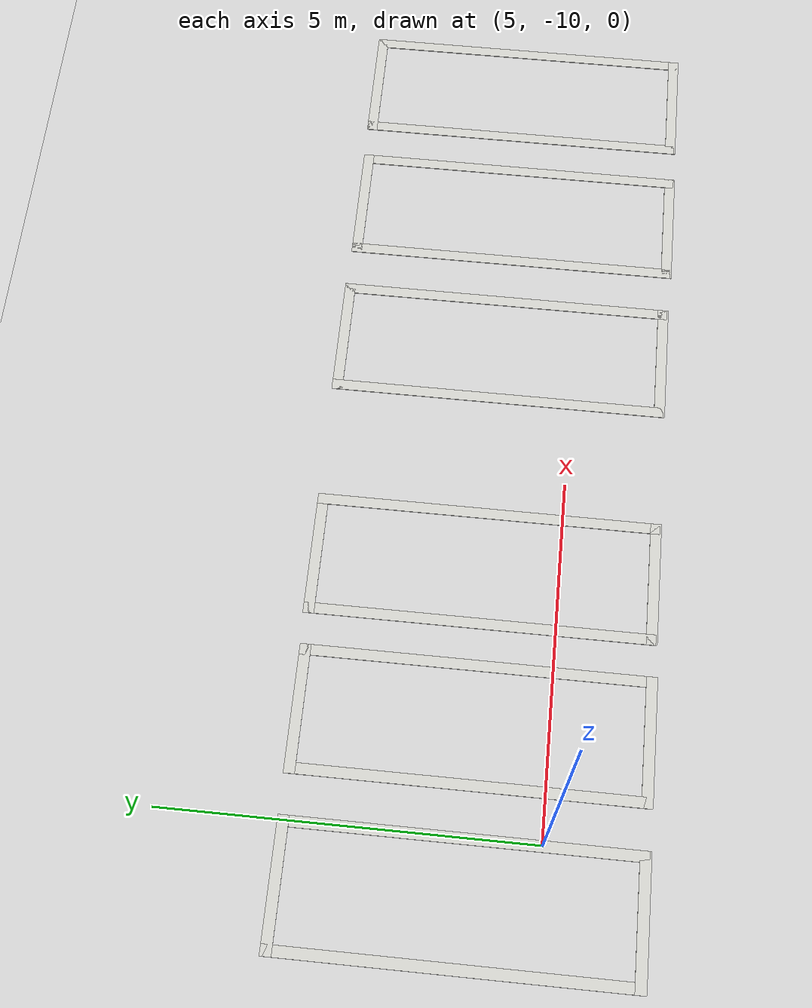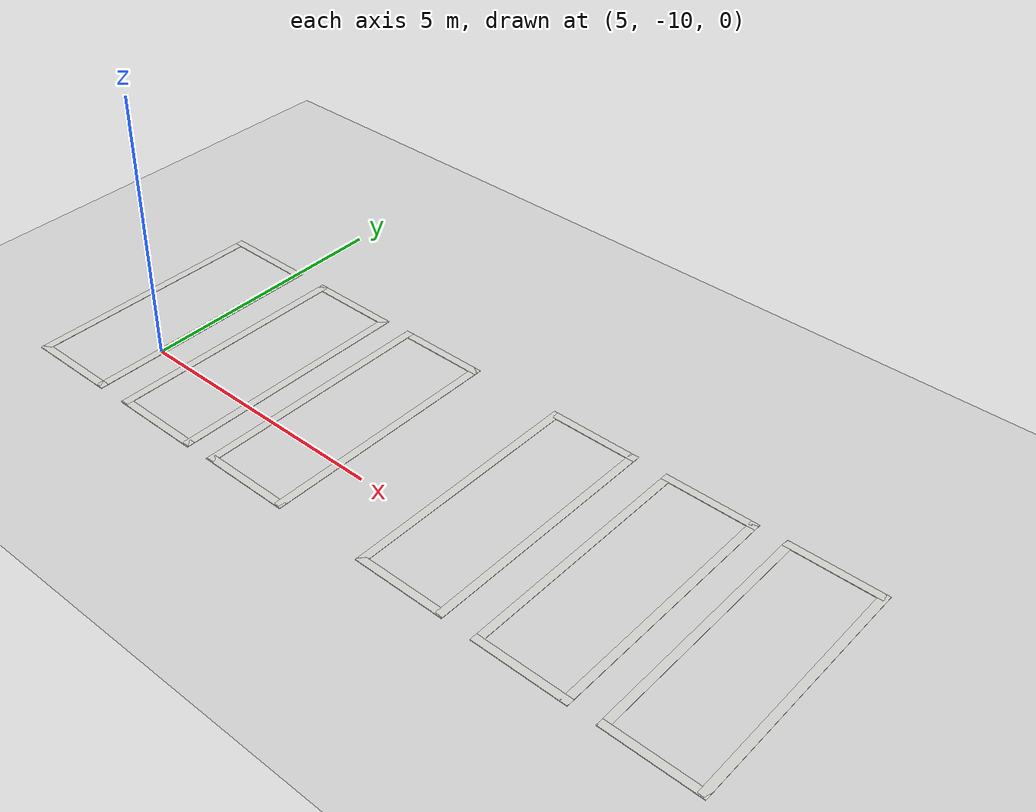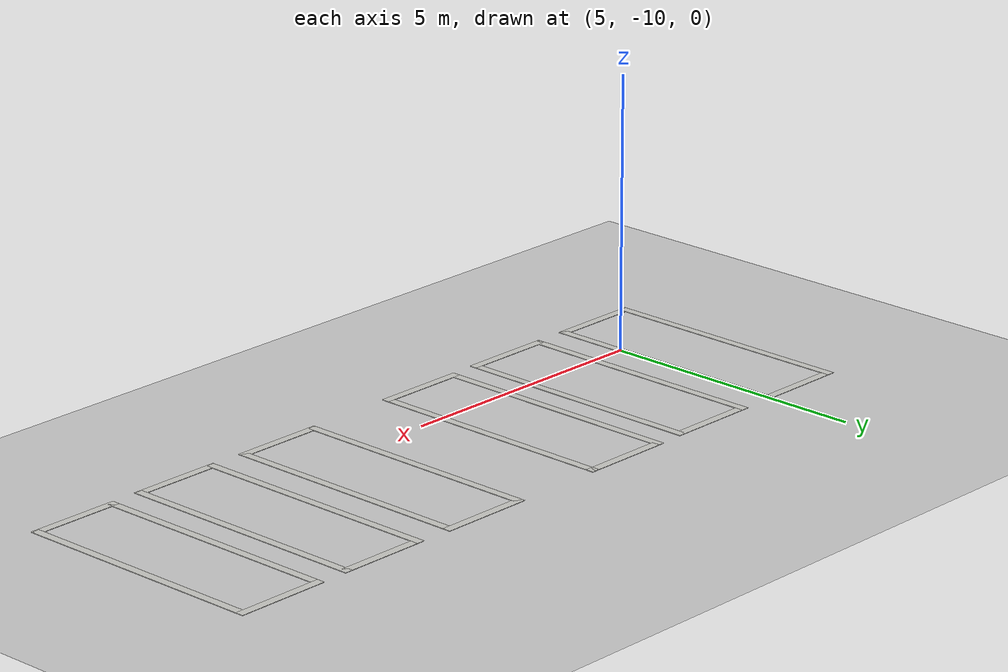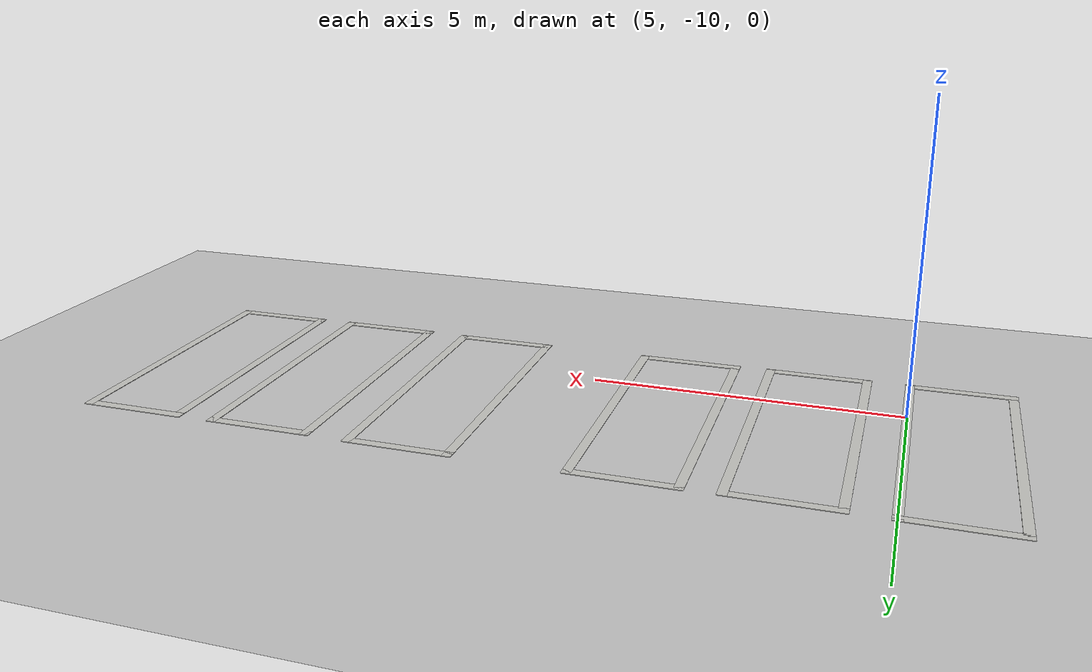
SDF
<sdf version="1.6">
 <world name="default">
  <model name="ground_plane">
   <static>1</static>
   <link name="link">
    <collision name="collision">
     <geometry><plane><normal>0 0 1</normal><size>100 100</size></plane></geometry>
     <surface>
      <contact><collide_bitmask>65535</collide_bitmask></contact>
      <friction><ode><mu>100</mu><mu2>50</mu2></ode></friction>
     </surface>
    </collision>
    <visual name="visual">
     <cast_shadows>0</cast_shadows>
     <geometry><plane><normal>0 0 1</normal><size>100 100</size></plane></geometry>
     <material>
      <script><uri>file://media/materials/scripts/gazebo.material</uri><name>Gazebo/Grey</name></script>
     </material>
    </visual>
   </link>
  </model>
  <model name="box_front_clone_9">
   <pose>4.19929 -8.99758 0 0 -0 0</pose>
   <link name="Wall_3">
    <collision name="Wall_3_Collision"><geometry><box><size>0 0 0</size></box></geometry></collision>
    <visual name="Wall_3_Visual">
     <geometry><box><size>1.75 0.15 0.01</size></box></geometry>
     <material>
      <script><uri>file://media/materials/scripts/gazebo.material</uri><name>Gazebo/CeilingTiled</name></script>
      <ambient>1 1 1 1</ambient>
     </material>
     <meta><layer>0</layer></meta>
    </visual>
    <pose>0 2.31006 0 0 -0 0</pose>
   </link>
   <link name="Wall_4">
    <collision name="Wall_4_Collision"><geometry><box><size>0 0 0</size></box></geometry></collision>
    <visual name="Wall_4_Visual">
     <geometry><box><size>4.75 0.15 0.01</size></box></geometry>
     <material>
      <script><uri>file://media/materials/scripts/gazebo.material</uri><name>Gazebo/CeilingTiled</name></script>
      <ambient>1 1 1 1</ambient>
     </material>
     <meta><layer>0</layer></meta>
    </visual>
    <pose>0.8 0.010056 0 0 -0 -1.5708</pose>
   </link>
   <link name="Wall_5">
    <collision name="Wall_5_Collision">
     <geometry><box><size>0 0 0</size></box></geometry>
     <pose>0 0 1.25 0 -0 0</pose>
    </collision>
    <visual name="Wall_5_Visual">
     <geometry><box><size>1.75 0.15 0.01</size></box></geometry>
     <material>
      <script><uri>file://media/materials/scripts/gazebo.material</uri><name>Gazebo/CeilingTiled</name></script>
      <ambient>1 1 1 1</ambient>
     </material>
     <meta><layer>0</layer></meta>
    </visual>
    <pose>0 -2.31006 0 0 -0 3.14159</pose>
   </link>
   <link name="Wall_7">
    <collision name="Wall_7_Collision">
     <geometry><box><size>0 0 0</size></box></geometry>
     <pose>0 0 1.25 0 -0 0</pose>
    </collision>
    <visual name="Wall_7_Visual">
     <geometry><box><size>4.75 0.15 0.01</size></box></geometry>
     <material>
      <script><uri>file://media/materials/scripts/gazebo.material</uri><name>Gazebo/CeilingTiled</name></script>
      <ambient>1 1 1 1</ambient>
     </material>
     <meta><layer>0</layer></meta>
    </visual>
    <pose>-0.8 0.010056 0 0 -0 -1.5708</pose>
   </link>
   <static>1</static>
  </model>
  <model name="box_front_clone_10">
   <pose>6.48084 -8.99285 0 0 -0 0</pose>
   <link name="Wall_3">
    <collision name="Wall_3_Collision"><geometry><box><size>0 0 0</size></box></geometry></collision>
    <visual name="Wall_3_Visual">
     <geometry><box><size>1.75 0.15 0.01</size></box></geometry>
     <material>
      <script><uri>file://media/materials/scripts/gazebo.material</uri><name>Gazebo/CeilingTiled</name></script>
      <ambient>1 1 1 1</ambient>
     </material>
     <meta><layer>0</layer></meta>
    </visual>
    <pose>0 2.31006 0 0 -0 0</pose>
   </link>
   <link name="Wall_4">
    <collision name="Wall_4_Collision"><geometry><box><size>0 0 0</size></box></geometry></collision>
    <visual name="Wall_4_Visual">
     <geometry><box><size>4.75 0.15 0.01</size></box></geometry>
     <material>
      <script><uri>file://media/materials/scripts/gazebo.material</uri><name>Gazebo/CeilingTiled</name></script>
      <ambient>1 1 1 1</ambient>
     </material>
     <meta><layer>0</layer></meta>
    </visual>
    <pose>0.8 0.010056 0 0 -0 -1.5708</pose>
   </link>
   <link name="Wall_5">
    <collision name="Wall_5_Collision">
     <geometry><box><size>0 0 0</size></box></geometry>
     <pose>0 0 1.25 0 -0 0</pose>
    </collision>
    <visual name="Wall_5_Visual">
     <geometry><box><size>1.75 0.15 0.01</size></box></geometry>
     <material>
      <script><uri>file://media/materials/scripts/gazebo.material</uri><name>Gazebo/CeilingTiled</name></script>
      <ambient>1 1 1 1</ambient>
     </material>
     <meta><layer>0</layer></meta>
    </visual>
    <pose>0 -2.31006 0 0 -0 3.14159</pose>
   </link>
   <link name="Wall_7">
    <collision name="Wall_7_Collision">
     <geometry><box><size>0 0 0</size></box></geometry>
     <pose>0 0 1.25 0 -0 0</pose>
    </collision>
    <visual name="Wall_7_Visual">
     <geometry><box><size>4.75 0.15 0.01</size></box></geometry>
     <material>
      <script><uri>file://media/materials/scripts/gazebo.material</uri><name>Gazebo/CeilingTiled</name></script>
      <ambient>1 1 1 1</ambient>
     </material>
     <meta><layer>0</layer></meta>
    </visual>
    <pose>-0.8 0.010056 0 0 -0 -1.5708</pose>
   </link>
   <static>1</static>
  </model>
  <model name="box_front_clone_11">
   <pose>8.66718 -8.97 0 0 -0 0</pose>
   <link name="Wall_3">
    <collision name="Wall_3_Collision"><geometry><box><size>0 0 0</size></box></geometry></collision>
    <visual name="Wall_3_Visual">
     <geometry><box><size>1.75 0.15 0.01</size></box></geometry>
     <material>
      <script><uri>file://media/materials/scripts/gazebo.material</uri><name>Gazebo/CeilingTiled</name></script>
      <ambient>1 1 1 1</ambient>
     </material>
     <meta><layer>0</layer></meta>
    </visual>
    <pose>0 2.31006 0 0 -0 0</pose>
   </link>
   <link name="Wall_4">
    <collision name="Wall_4_Collision"><geometry><box><size>0 0 0</size></box></geometry></collision>
    <visual name="Wall_4_Visual">
     <geometry><box><size>4.75 0.15 0.01</size></box></geometry>
     <material>
      <script><uri>file://media/materials/scripts/gazebo.material</uri><name>Gazebo/CeilingTiled</name></script>
      <ambient>1 1 1 1</ambient>
     </material>
     <meta><layer>0</layer></meta>
    </visual>
    <pose>0.8 0.010056 0 0 -0 -1.5708</pose>
   </link>
   <link name="Wall_5">
    <collision name="Wall_5_Collision">
     <geometry><box><size>0 0 0</size></box></geometry>
     <pose>0 0 1.25 0 -0 0</pose>
    </collision>
    <visual name="Wall_5_Visual">
     <geometry><box><size>1.75 0.15 0.01</size></box></geometry>
     <material>
      <script><uri>file://media/materials/scripts/gazebo.material</uri><name>Gazebo/CeilingTiled</name></script>
      <ambient>1 1 1 1</ambient>
     </material>
     <meta><layer>0</layer></meta>
    </visual>
    <pose>0 -2.31006 0 0 -0 3.14159</pose>
   </link>
   <link name="Wall_7">
    <collision name="Wall_7_Collision">
     <geometry><box><size>0 0 0</size></box></geometry>
     <pose>0 0 1.25 0 -0 0</pose>
    </collision>
    <visual name="Wall_7_Visual">
     <geometry><box><size>4.75 0.15 0.01</size></box></geometry>
     <material>
      <script><uri>file://media/materials/scripts/gazebo.material</uri><name>Gazebo/CeilingTiled</name></script>
      <ambient>1 1 1 1</ambient>
     </material>
     <meta><layer>0</layer></meta>
    </visual>
    <pose>-0.8 0.010056 0 0 -0 -1.5708</pose>
   </link>
   <static>1</static>
  </model>
  <model name="box_front_clone_12">
   <pose>12.0614 -8.95658 0 0 -0 0</pose>
   <link name="Wall_3">
    <collision name="Wall_3_Collision"><geometry><box><size>0 0 0</size></box></geometry></collision>
    <visual name="Wall_3_Visual">
     <geometry><box><size>1.75 0.15 0.01</size></box></geometry>
     <material>
      <script><uri>file://media/materials/scripts/gazebo.material</uri><name>Gazebo/CeilingTiled</name></script>
      <ambient>1 1 1 1</ambient>
     </material>
     <meta><layer>0</layer></meta>
    </visual>
    <pose>0 2.31006 0 0 -0 0</pose>
   </link>
   <link name="Wall_4">
    <collision name="Wall_4_Collision"><geometry><box><size>0 0 0</size></box></geometry></collision>
    <visual name="Wall_4_Visual">
     <geometry><box><size>4.75 0.15 0.01</size></box></geometry>
     <material>
      <script><uri>file://media/materials/scripts/gazebo.material</uri><name>Gazebo/CeilingTiled</name></script>
      <ambient>1 1 1 1</ambient>
     </material>
     <meta><layer>0</layer></meta>
    </visual>
    <pose>0.8 0.010056 0 0 -0 -1.5708</pose>
   </link>
   <link name="Wall_5">
    <collision name="Wall_5_Collision">
     <geometry><box><size>0 0 0</size></box></geometry>
     <pose>0 0 1.25 0 -0 0</pose>
    </collision>
    <visual name="Wall_5_Visual">
     <geometry><box><size>1.75 0.15 0.01</size></box></geometry>
     <material>
      <script><uri>file://media/materials/scripts/gazebo.material</uri><name>Gazebo/CeilingTiled</name></script>
      <ambient>1 1 1 1</ambient>
     </material>
     <meta><layer>0</layer></meta>
    </visual>
    <pose>0 -2.31006 0 0 -0 3.14159</pose>
   </link>
   <link name="Wall_7">
    <collision name="Wall_7_Collision">
     <geometry><box><size>0 0 0</size></box></geometry>
     <pose>0 0 1.25 0 -0 0</pose>
    </collision>
    <visual name="Wall_7_Visual">
     <geometry><box><size>4.75 0.15 0.01</size></box></geometry>
     <material>
      <script><uri>file://media/materials/scripts/gazebo.material</uri><name>Gazebo/CeilingTiled</name></script>
      <ambient>1 1 1 1</ambient>
     </material>
     <meta><layer>0</layer></meta>
    </visual>
    <pose>-0.8 0.010056 0 0 -0 -1.5708</pose>
   </link>
   <static>1</static>
  </model>
  <model name="box_front_clone_13">
   <pose>14.3693 -8.97971 0 0 -0 0</pose>
   <link name="Wall_3">
    <collision name="Wall_3_Collision"><geometry><box><size>0 0 0</size></box></geometry></collision>
    <visual name="Wall_3_Visual">
     <geometry><box><size>1.75 0.15 0.01</size></box></geometry>
     <material>
      <script><uri>file://media/materials/scripts/gazebo.material</uri><name>Gazebo/CeilingTiled</name></script>
      <ambient>1 1 1 1</ambient>
     </material>
     <meta><layer>0</layer></meta>
    </visual>
    <pose>0 2.31006 0 0 -0 0</pose>
   </link>
   <link name="Wall_4">
    <collision name="Wall_4_Collision"><geometry><box><size>0 0 0</size></box></geometry></collision>
    <visual name="Wall_4_Visual">
     <geometry><box><size>4.75 0.15 0.01</size></box></geometry>
     <material>
      <script><uri>file://media/materials/scripts/gazebo.material</uri><name>Gazebo/CeilingTiled</name></script>
      <ambient>1 1 1 1</ambient>
     </material>
     <meta><layer>0</layer></meta>
    </visual>
    <pose>0.8 0.010056 0 0 -0 -1.5708</pose>
   </link>
   <link name="Wall_5">
    <collision name="Wall_5_Collision">
     <geometry><box><size>0 0 0</size></box></geometry>
     <pose>0 0 1.25 0 -0 0</pose>
    </collision>
    <visual name="Wall_5_Visual">
     <geometry><box><size>1.75 0.15 0.01</size></box></geometry>
     <material>
      <script><uri>file://media/materials/scripts/gazebo.material</uri><name>Gazebo/CeilingTiled</name></script>
      <ambient>1 1 1 1</ambient>
     </material>
     <meta><layer>0</layer></meta>
    </visual>
    <pose>0 -2.31006 0 0 -0 3.14159</pose>
   </link>
   <link name="Wall_7">
    <collision name="Wall_7_Collision">
     <geometry><box><size>0 0 0</size></box></geometry>
     <pose>0 0 1.25 0 -0 0</pose>
    </collision>
    <visual name="Wall_7_Visual">
     <geometry><box><size>4.75 0.15 0.01</size></box></geometry>
     <material>
      <script><uri>file://media/materials/scripts/gazebo.material</uri><name>Gazebo/CeilingTiled</name></script>
      <ambient>1 1 1 1</ambient>
     </material>
     <meta><layer>0</layer></meta>
    </visual>
    <pose>-0.8 0.010056 0 0 -0 -1.5708</pose>
   </link>
   <static>1</static>
  </model>
  <model name="box_front_clone_14">
   <pose>16.5954 -8.96966 0 0 -0 0</pose>
   <link name="Wall_3">
    <collision name="Wall_3_Collision"><geometry><box><size>0 0 0</size></box></geometry></collision>
    <visual name="Wall_3_Visual">
     <geometry><box><size>1.75 0.15 0.01</size></box></geometry>
     <material>
      <script><uri>file://media/materials/scripts/gazebo.material</uri><name>Gazebo/CeilingTiled</name></script>
      <ambient>1 1 1 1</ambient>
     </material>
     <meta><layer>0</layer></meta>
    </visual>
    <pose>0 2.31006 0 0 -0 0</pose>
   </link>
   <link name="Wall_4">
    <collision name="Wall_4_Collision"><geometry><box><size>0 0 0</size></box></geometry></collision>
    <visual name="Wall_4_Visual">
     <geometry><box><size>4.75 0.15 0.01</size></box></geometry>
     <material>
      <script><uri>file://media/materials/scripts/gazebo.material</uri><name>Gazebo/CeilingTiled</name></script>
      <ambient>1 1 1 1</ambient>
     </material>
     <meta><layer>0</layer></meta>
    </visual>
    <pose>0.8 0.010056 0 0 -0 -1.5708</pose>
   </link>
   <link name="Wall_5">
    <collision name="Wall_5_Collision">
     <geometry><box><size>0 0 0</size></box></geometry>
     <pose>0 0 1.25 0 -0 0</pose>
    </collision>
    <visual name="Wall_5_Visual">
     <geometry><box><size>1.75 0.15 0.01</size></box></geometry>
     <material>
      <script><uri>file://media/materials/scripts/gazebo.material</uri><name>Gazebo/CeilingTiled</name></script>
      <ambient>1 1 1 1</ambient>
     </material>
     <meta><layer>0</layer></meta>
    </visual>
    <pose>0 -2.31006 0 0 -0 3.14159</pose>
   </link>
   <link name="Wall_7">
    <collision name="Wall_7_Collision">
     <geometry><box><size>0 0 0</size></box></geometry>
     <pose>0 0 1.25 0 -0 0</pose>
    </collision>
    <visual name="Wall_7_Visual">
     <geometry><box><size>4.75 0.15 0.01</size></box></geometry>
     <material>
      <script><uri>file://media/materials/scripts/gazebo.material</uri><name>Gazebo/CeilingTiled</name></script>
      <ambient>1 1 1 1</ambient>
     </material>
     <meta><layer>0</layer></meta>
    </visual>
    <pose>-0.8 0.010056 0 0 -0 -1.5708</pose>
   </link>
   <static>1</static>
  </model>
 </world>
</sdf>
